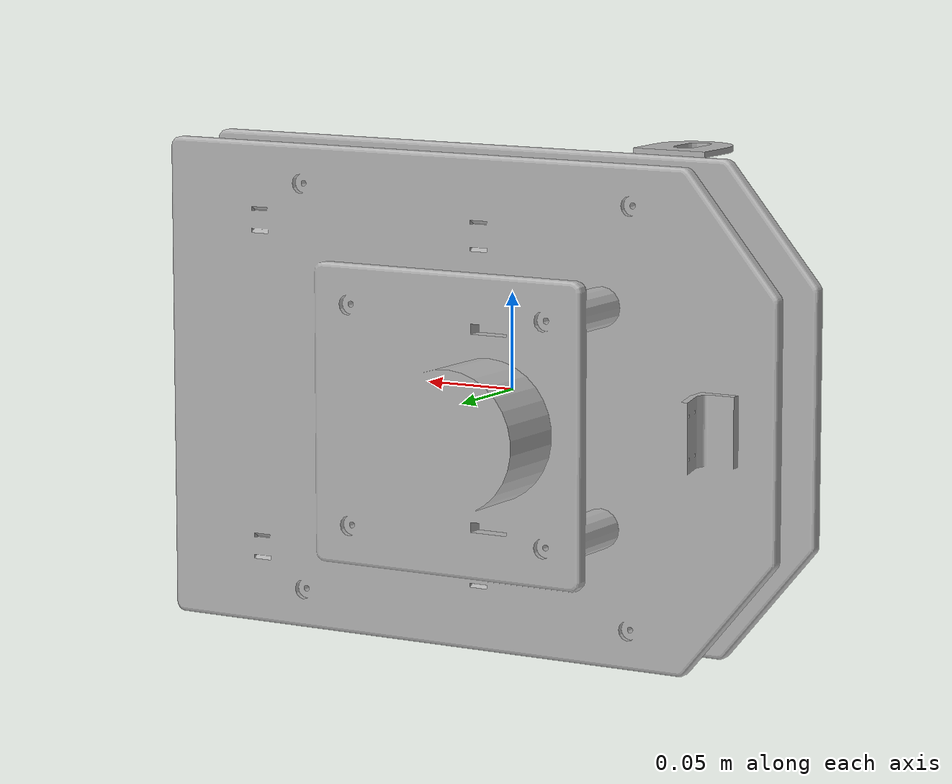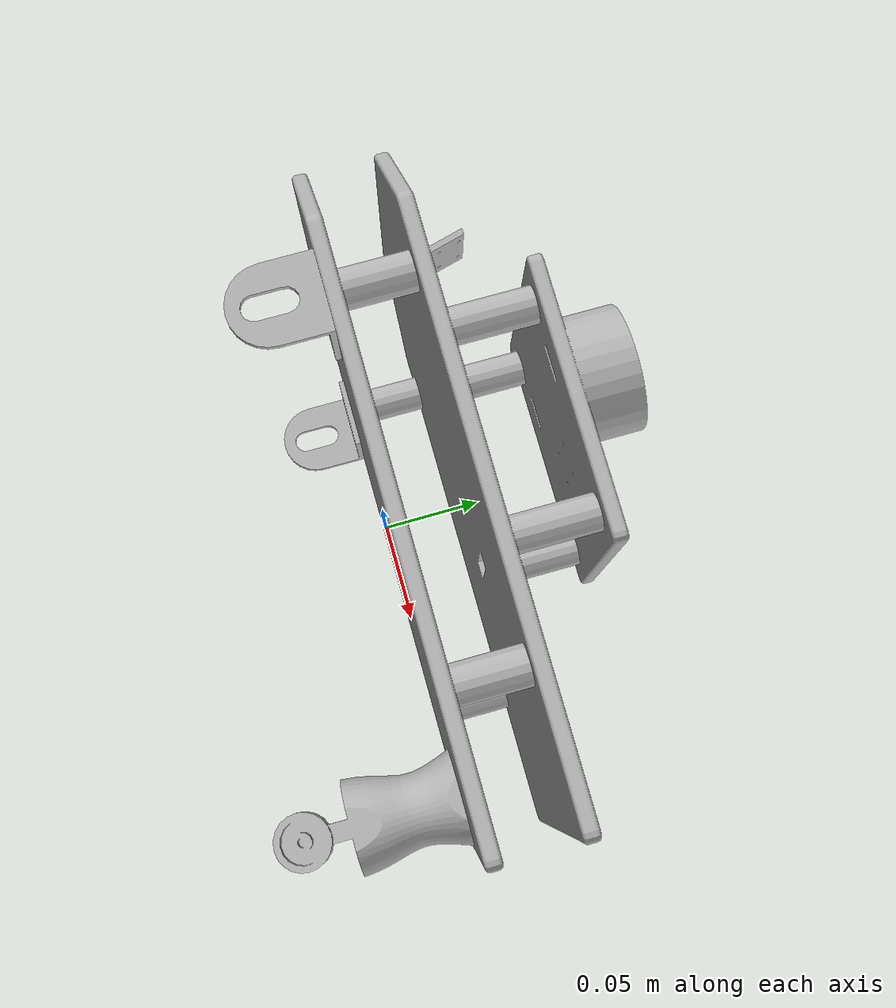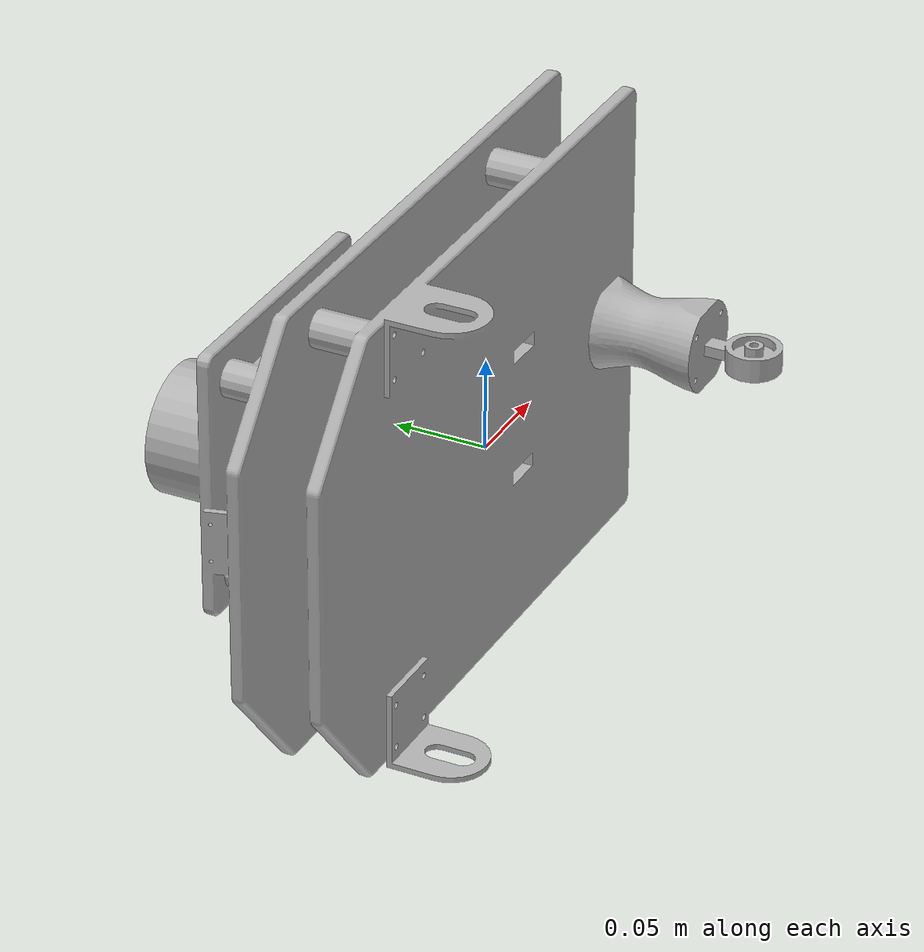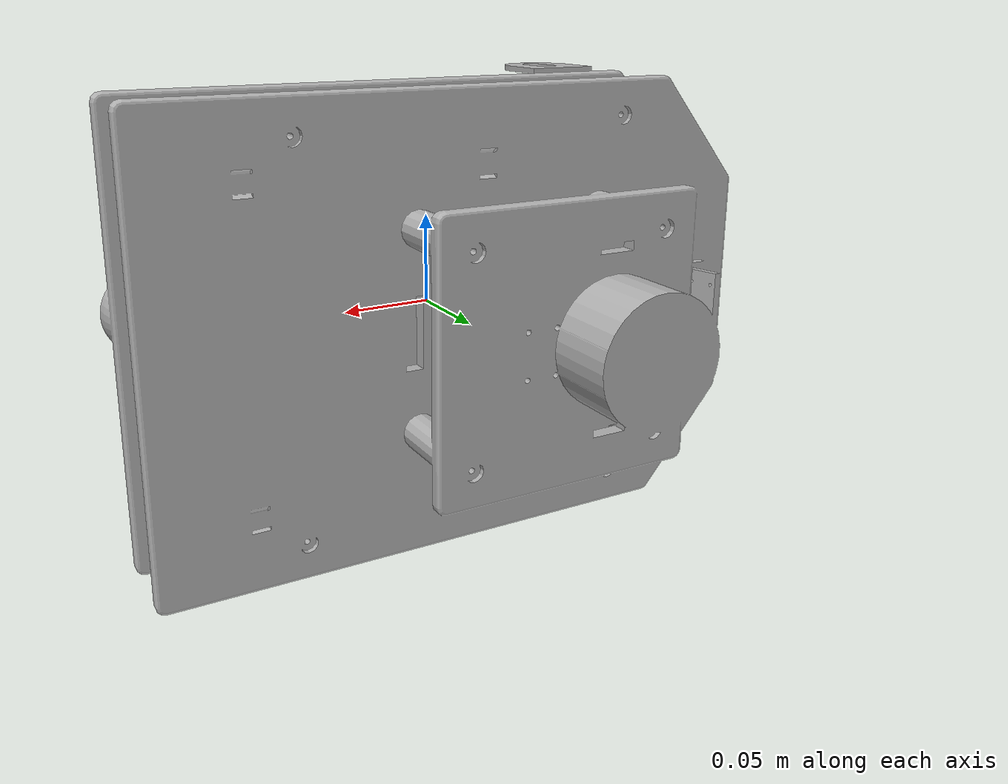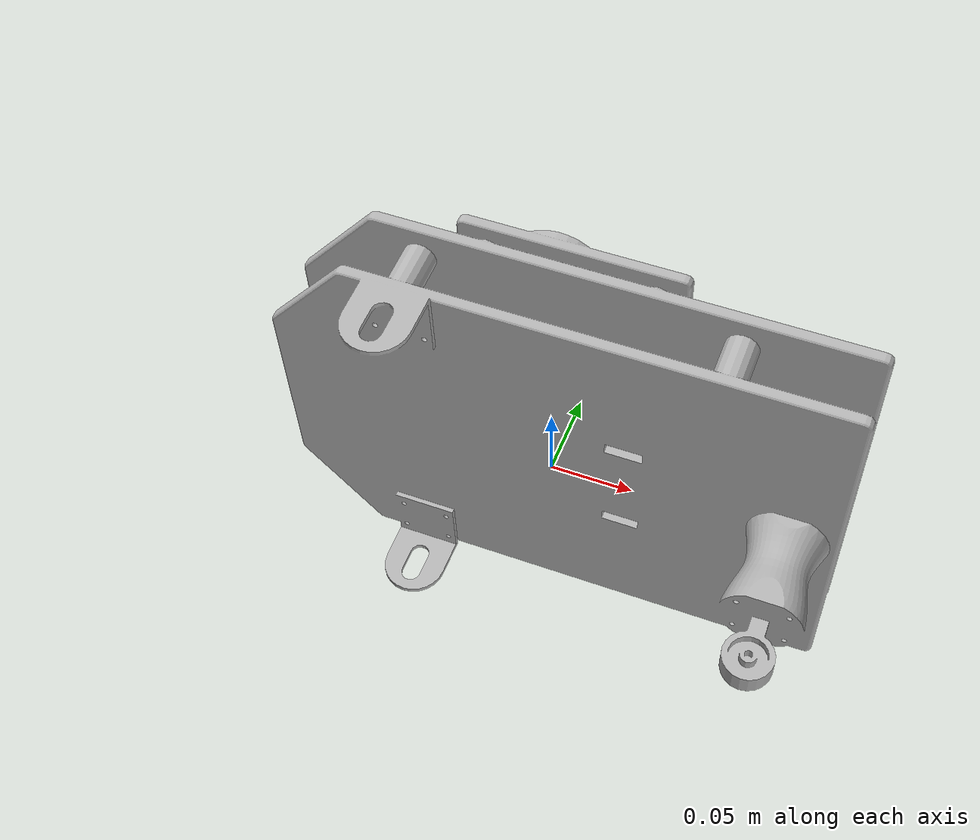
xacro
<?xml version="1.0" ?>
<robot name="urdf_2" xmlns:xacro="http://www.ros.org/wiki/xacro">

<xacro:include filename="$(find urdf_2_description)/urdf/materials.xacro" />
<xacro:include filename="$(find urdf_2_description)/urdf/urdf_2.trans" />
<xacro:include filename="$(find urdf_2_description)/urdf/urdf_2.gazebo" />
<link name="base_link">
  <inertial>
    <origin xyz="0.0023785599724814956 0.03972571481578559 2.798093503583025e-10" rpy="0 0 0"/>
    <mass value="14.806107506804679"/>
    <inertia ixx="0.090258" iyy="0.193204" izz="0.158401" ixy="0.015813" iyz="0.0" ixz="-0.0"/>
  </inertial>
  <visual>
    <origin xyz="0 0 0" rpy="0 0 0"/>
    <geometry>
      <mesh filename="package://urdf_2_description/meshes/base_link.stl" scale="0.001 0.001 0.001"/>
    </geometry>
    <material name="silver"/>
  </visual>
  <collision>
    <origin xyz="0 0 0" rpy="0 0 0"/>
    <geometry>
      <mesh filename="package://urdf_2_description/meshes/base_link.stl" scale="0.001 0.001 0.001"/>
    </geometry>
  </collision>
</link>

</robot>

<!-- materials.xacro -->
<robot name="urdf_2" xmlns:xacro="http://www.ros.org/wiki/xacro" >

<material name="silver">
  <color rgba="0.700 0.700 0.700 1.000"/>
</material>

</robot>

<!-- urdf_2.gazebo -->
<robot name="urdf_2" xmlns:xacro="http://www.ros.org/wiki/xacro" >

<xacro:property name="body_color" value="Gazebo/Silver" />

<gazebo>
  <plugin name="control" filename="libgazebo_ros_control.so"/>
</gazebo>
<gazebo reference="base_link">
  <material>${body_color}</material>
  <mu1>0.2</mu1>
  <mu2>0.2</mu2>
  <selfCollide>true</selfCollide>
  <gravity>true</gravity>
</gazebo>

</robot>
